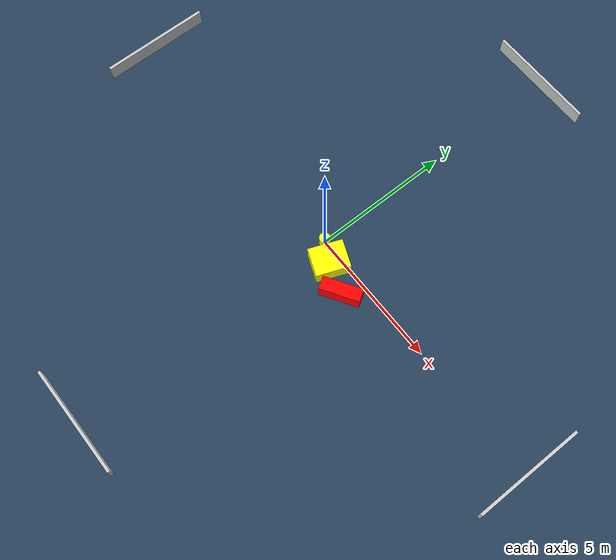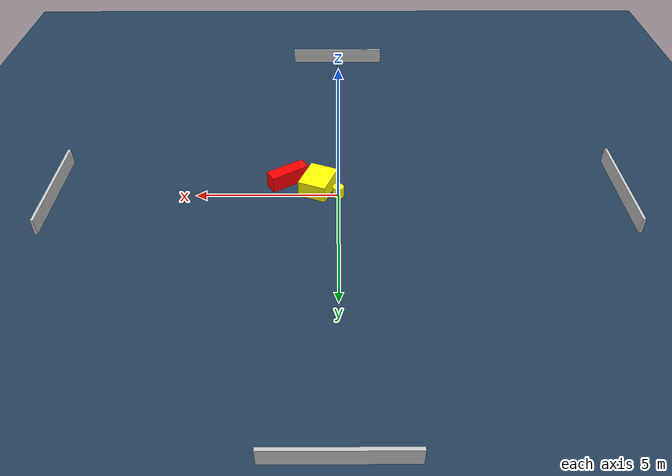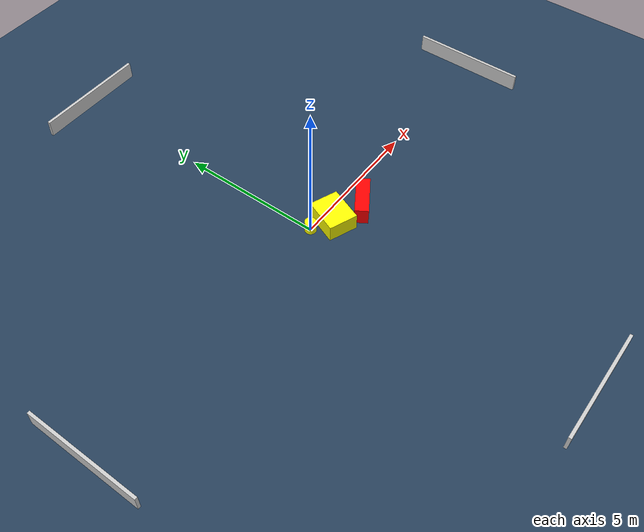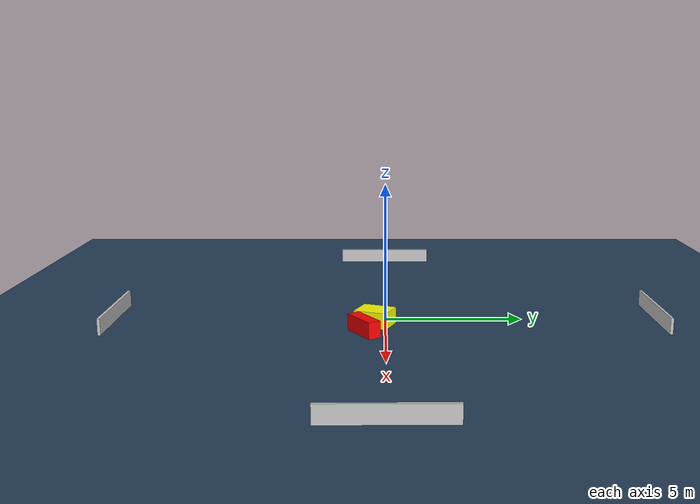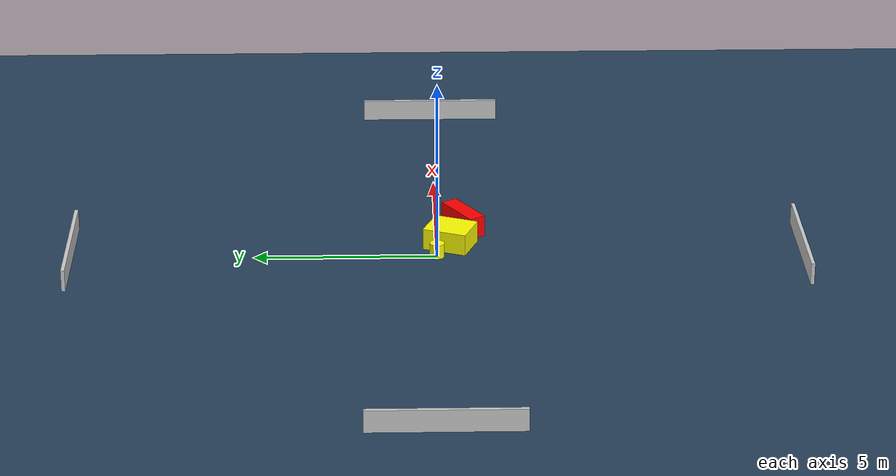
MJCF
<?xml version="1.0" ?>
<mujoco model="generated_environment">
  <option timestep="0.01" integrator="RK4" cone="elliptic"/>
  <default>
    <geom density="1"/>
  </default>
  <asset>
    <texture builtin="gradient" height="3072" name="skybox" rgb1="0.3 0.5 0.7" rgb2="0 0 0" type="skybox" width="512"/>
    <texture builtin="checker" height="300" name="groundplane" rgb1="0.2 0.3 0.4" rgb2="0.1 0.2 0.3" type="2d" width="300"/>
    <material name="groundplane" reflectance="0.2" texrepeat="5 5" texture="groundplane"/>
  </asset>
  <worldbody>
    <light dir="0 0 -1" directional="true" pos="0 0 1.5"/>
    <geom condim="3" friction="0.5 0.005 0.001" material="groundplane" name="floor" pos="0 0 0" size="0 0 0.05" type="plane"/>
    <body name="walls">
      <geom name="wall_1" condim="4" pos="-10.0 0.0 0.3" rgba="0.800000011920929 0.800000011920929 0.800000011920929 1.0" size="0.05 2.0 0.3" type="box"/>
      <geom name="wall_2" condim="4" pos="10.0 0.0 0.3" rgba="0.800000011920929 0.800000011920929 0.800000011920929 1.0" size="0.05 2.0 0.3" type="box"/>
      <geom name="wall_3" condim="4" pos="0.0 -10.0 0.3" rgba="0.800000011920929 0.800000011920929 0.800000011920929 1.0" size="2.0 0.05 0.3" type="box"/>
      <geom name="wall_4" condim="4" pos="0.0 10.0 0.3" rgba="0.800000011920929 0.800000011920929 0.800000011920929 1.0" size="2.0 0.05 0.3" type="box"/>
    </body>
    <body name="robot">
      <joint name="joint_x" type="slide" pos="0 0 0" axis="1 0 0"/>
      <joint name="joint_y" type="slide" pos="0 0 0" axis="0 1 0"/>
      <geom name="robot" type="cylinder" pos="0.0 0.0 0.2" size="0.2 0.2 0.0" mass="5.0" friction="1.0 0.005 0.0001" condim="4" rgba="1.0 1.0 0.0 1.0"/>
    </body>
    <body name="obstacle_1_movable">
      <geom name="obstacle_1_movable" condim="4" pos="0.7148614662228981 -0.3808645552878931 0.3" euler="0 0 158.29184824373021" friction="0.0 0.005 0.001" rgba="1.0 1.0 0.0 1.0" size="0.5087074587961944 0.6156609833714044 0.3" type="box" mass="0.1"/>
      <joint type="free"/>
    </body>
    <body name="obstacle_2_static">
      <geom name="obstacle_2_static" condim="4" pos="1.8157265501854651 -0.7626229395234547 0.3" euler="0 0 122.31848577686934" friction="0.0 0.005 0.001" rgba="1.0 0.0 0.0 1.0" size="0.23547058417720745 0.7153059989265635 0.3" type="box"/>
    </body>
  </worldbody>
  <actuator>
    <motor name="actuator_x" joint="joint_x" gear="1" ctrlrange="-1 1"/>
    <motor name="actuator_y" joint="joint_y" gear="1" ctrlrange="-1 1"/>
  </actuator>
</mujoco>
